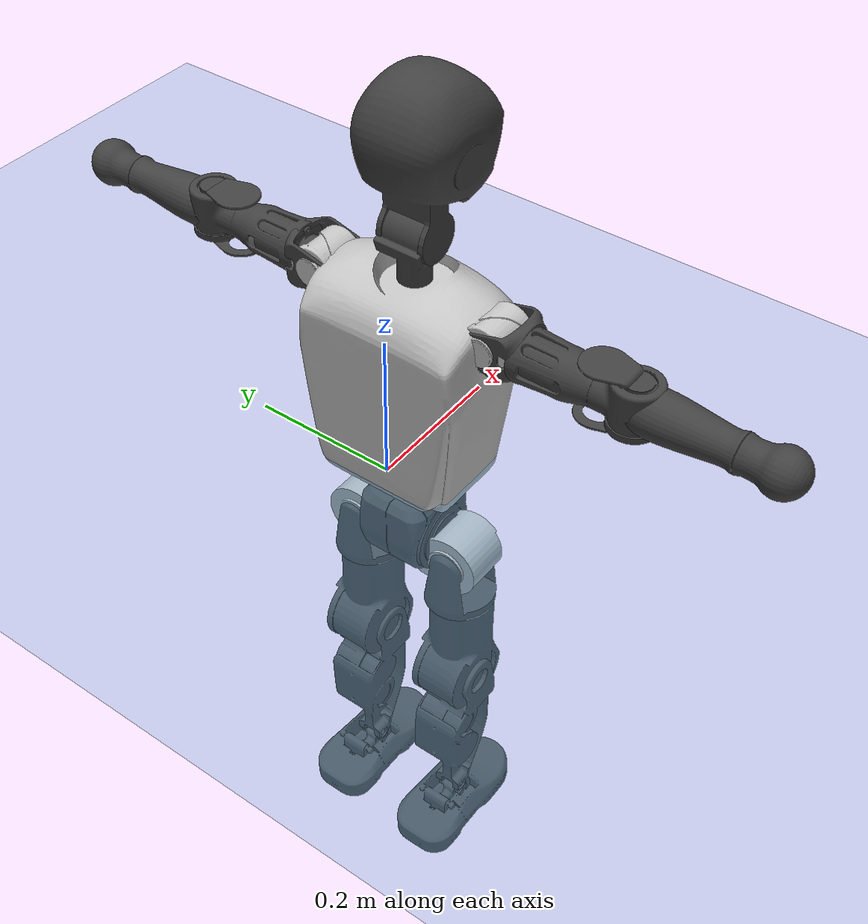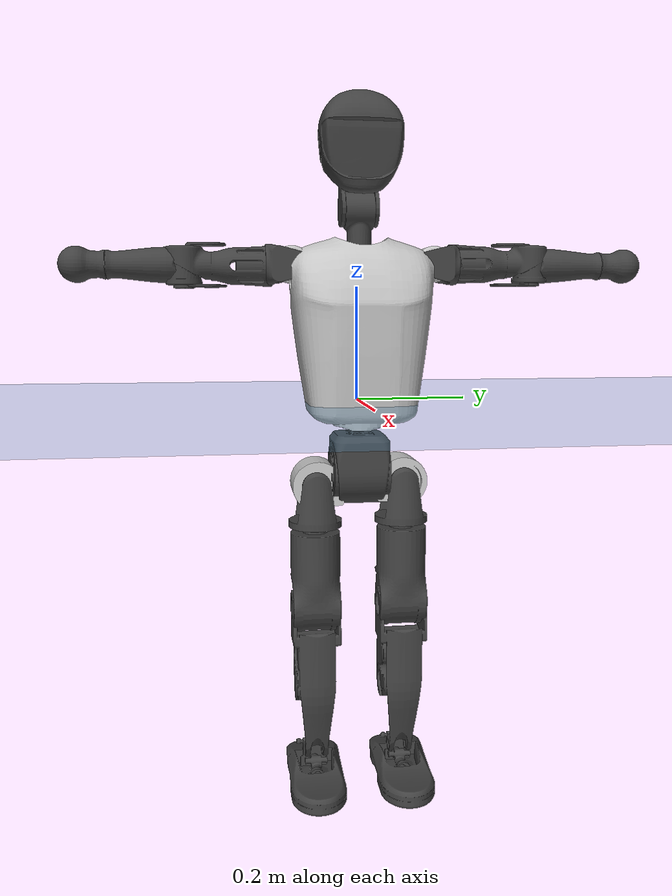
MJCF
<mujoco model="T1">
  <compiler angle="radian" assetdir="assets" balanceinertia="true" inertiafromgeom="false"/>

  <option timestep="0.005" density="1.2" viscosity="2e-05"/>

  <size nkey="1"/>

  <visual>
    <quality shadowsize="8192"/>
    <map shadowclip="0.5"/>
  </visual>

  <default>
    <default class="/">
      <joint armature="0.01" damping="0.01" frictionloss="0.1"/>
      <geom contype="0" conaffinity="0" group="1" solref="-1000 -80"/>
      <site size="0.01 0.005 0.005" group="5"/>
      <general forcelimited="true" biastype="affine" gainprm="25" biasprm="0 -25 -0.6"/>
      <default class="t1">
        <geom rgba="0.25 0.25 0.25 1"/>
        <default class="visual">
          <geom type="mesh" group="2"/>
        </default>
        <default class="collision">
          <geom group="3"/>
        </default>
        <default class="foot">
          <geom size="0.1115 0.05 0.015" type="box" condim="6" group="4" priority="1" solimp="0.015 1 0.015"/>
        </default>
        <default class="reward_collision_sphere">
          <geom group="5" rgba="1 0 0 1"/>
        </default>
      </default>
    </default>
  </default>

  <asset>
    <texture type="skybox" colorspace="auto" name="//unnamed_texture_0" builtin="gradient" rgb1="0.95 0.95 0.95" rgb2="0.95 0.95 0.95" width="100" height="600"/>
    <texture type="2d" colorspace="auto" name="texplane" builtin="checker" rgb1="0.345 0.575 0.748" rgb2="0.345 0.575 0.748" markrgb="1 1 1" width="512" height="512"/>
    <material name="MatPlane" class="/" texture="texplane" texuniform="true" texrepeat="2 2" specular="0.9"/>
    <mesh name="Trunk" class="/" file="Trunk.stl"/>
    <mesh name="H1" class="/" file="H1.stl"/>
    <mesh name="H2" class="/" file="H2.stl"/>
    <mesh name="AL1" class="/" file="AL1.stl"/>
    <mesh name="AL2" class="/" file="AL2.stl"/>
    <mesh name="AL3" class="/" file="AL3.stl"/>
    <mesh name="left_hand_link" class="/" file="left_hand_link.stl"/>
    <mesh name="AR1" class="/" file="AR1.stl"/>
    <mesh name="AR2" class="/" file="AR2.stl"/>
    <mesh name="AR3" class="/" file="AR3.stl"/>
    <mesh name="right_hand_link" class="/" file="right_hand_link.stl"/>
    <mesh name="Waist" class="/" file="Waist.stl"/>
    <mesh name="Hip_Pitch_Left" class="/" file="Hip_Pitch_Left.stl"/>
    <mesh name="Hip_Roll_Left" class="/" file="Hip_Roll_Left.stl"/>
    <mesh name="Hip_Yaw_Left" class="/" file="Hip_Yaw_Left.stl"/>
    <mesh name="Shank_Left" class="/" file="Shank_Left.stl"/>
    <mesh name="Ankle_Cross_Left" class="/" file="Ankle_Cross_Left.stl"/>
    <mesh name="left_foot_link" class="/" file="left_foot_link.stl"/>
    <mesh name="Hip_Pitch_Right" class="/" file="Hip_Pitch_Right.stl"/>
    <mesh name="Hip_Roll_Right" class="/" file="Hip_Roll_Right.stl"/>
    <mesh name="Hip_Yaw_Right" class="/" file="Hip_Yaw_Right.stl"/>
    <mesh name="Shank_Right" class="/" file="Shank_Right.stl"/>
    <mesh name="Ankle_Cross_Right" class="/" file="Ankle_Cross_Right.stl"/>
    <mesh name="right_foot_link" class="/" file="right_foot_link.stl"/>
  </asset>

  <worldbody>
    <geom name="floor" class="/" size="100 100 0.125" type="plane" group="0" material="MatPlane"/>
    <light name="toplight_shadow" class="/" pos="0 0 5" dir="0.0990148 0.0990148 -0.990148" type="directional" ambient="0.04 0.04 0.04" diffuse="0.55 0.55 0.55" specular="0.12 0.12 0.12"/>
    <light name="toplight_fill" class="/" pos="0 0 5" dir="0.0990148 0.0990148 -0.990148" type="directional" castshadow="false" ambient="0.04 0.04 0.04" diffuse="0.3 0.3 0.3" specular="0.08 0.08 0.08"/>
    <body name="trunk" childclass="t1" pos="-0.000190946 -0.00104 0.00263289" quat="1 0.000131056 6.45715e-05 5.21657e-05">
      <inertial pos="0.0475717 -0.0034118 0.113009" quat="0.999867 -0.00713965 -0.0138707 -0.00479098" mass="7.84314" diaginertia="0.0402088 0.0143023 0.0816313"/>
      <joint name="//unnamed_joint_0" type="free" armature="0" damping="0" frictionloss="0"/>
      <geom name="//unnamed_geom_1" class="visual" rgba="0.76 0.76 0.76 1" mesh="Trunk"/>
      <geom name="//unnamed_geom_2" class="collision" size="0.0660976 0.0881302 0.132195" pos="0.0507643 0 0.129588" type="box"/>
      <geom name="//unnamed_geom_3" class="reward_collision_sphere" size="0.10135" pos="0.0507643 0 0.10799"/>
      <geom name="//unnamed_geom_4" class="reward_collision_sphere" size="0.0132195" pos="0.0507643 0.0610245 0"/>
      <geom name="//unnamed_geom_5" class="reward_collision_sphere" size="0.0132195" pos="0.0507643 -0.0610245 0"/>
      <geom name="//unnamed_geom_6" class="reward_collision_sphere" size="0.0132195" pos="0.0507643 0.0768191 0.194382"/>
      <geom name="//unnamed_geom_7" class="reward_collision_sphere" size="0.0132195" pos="0.0507643 -0.0768191 0.194382"/>
      <site name="imu" pos="0.000382287 0.0139175 -0.00304861" size="0.00881302"/>
      <camera name="track" pos="0 -1.43587 0" quat="0.707107 0.707107 0 0" mode="trackcom"/>
      <camera name="ego_camera" pos="0.103221 0 0.453557" quat="-0.5 -0.5 0.5 0.5"/>
      <body name="H1" pos="0.0522768 -0.00242045 0.262198" quat="0.999999 0.00132045 4.10786e-05 0.000368301">
        <inertial pos="-0.00194993 -8.59514e-06 0.0626223" quat="0.764098 -0.0128402 0.00165694 0.64497" mass="0.295277" diaginertia="0.000103292 4.35176e-05 0.000222622"/>
        <joint name="AAHead_yaw" pos="0 0 0" axis="0.000362692 0.000890782 1" range="-1.55668 1.62092" armature="0.00878935" damping="0" frictionloss="0.0786345"/>
        <geom name="//unnamed_geom_8" class="visual" mesh="H1"/>
        <body name="H2" pos="-0.000444315 -0.000240358 0.0645257" quat="0.999999 -0.00114699 -8.88708e-05 3.89968e-05">
          <inertial pos="0.00484963 0.00243385 0.109055" quat="0.987282 0.107587 -0.0847265 -0.0807548" mass="0.43146" diaginertia="0.000881197 0.000363919 0.00250516"/>
          <joint name="Head_pitch" pos="0 0 0" axis="-0.0124006 -0.999922 -0.0016962" range="-1.24042 0.363094" armature="0.00897437" damping="0.00270191" frictionloss="0.0902212"/>
          <geom name="//unnamed_geom_9" class="visual" mesh="H2"/>
          <geom name="//unnamed_geom_10" class="collision" size="0.0705041" pos="0.00846072 0 0.118789"/>
          <geom name="//unnamed_geom_11" class="reward_collision_sphere" size="0.0793171" pos="0.0169214 0 0.10799"/>
        </body>
      </body>
      <body name="AL1" pos="0.0494489 0.0781133 0.234642" quat="1 -5.13322e-06 0.000394296 -2.38818e-05">
        <inertial pos="-0.000901078 0.0302572 -1.07709e-05" quat="0.509655 0.485679 -0.511372 0.492815" mass="0.349542" diaginertia="0.000565272 0.00023842 0.000415844"/>
        <joint name="Left_Shoulder_Pitch" pos="0 0 0" axis="0.0102062 0.999943 0.00326135" range="-3.25396 1.21648" armature="0.0076397" damping="0" frictionloss="0.0835042"/>
        <geom name="//unnamed_geom_12" class="visual" rgba="0.76 0.76 0.76 1" mesh="AL1"/>
        <body name="AL2" pos="0.000963715 0.0353052 -0.000215376" quat="0.999999 -0.000625878 -6.93932e-05 -0.00117215">
          <inertial pos="0.00577884 0.0288251 -0.000283918" quat="0.489816 0.511607 -0.49285 0.505409" mass="0.105235" diaginertia="0.000166667 6.40217e-05 0.000247051"/>
          <joint name="Left_Shoulder_Roll" pos="0 0 0" axis="-0.999999 -0.000509753 -0.00155761" range="-1.5767 1.75824" armature="0.00983036" damping="0.0200656" frictionloss="0.0922334"/>
          <geom name="//unnamed_geom_13" class="visual" mesh="AL2"/>
          <body name="AL3" pos="-0.0011209 0.0428389 0.00119151" quat="0.999999 0.000582288 -0.0012214 -0.000264981">
            <inertial pos="0.00244572 0.0602309 0.000732626" quat="0.709049 0.70507 -0.00826189 -0.00759309" mass="0.717822" diaginertia="0.00577644 0.0025851 0.000937669"/>
            <joint name="Left_Elbow_Pitch" pos="0 0 0" axis="-9.128e-05 -0.999998 0.00185377" stiffness="0.00167882" range="-2.2702 2.31932" armature="0.0100155" damping="0.00917997" frictionloss="0.0992309"/>
            <geom name="//unnamed_geom_14" class="visual" mesh="AL3"/>
            <geom name="//unnamed_geom_15" class="collision" size="0.026439 0.0660976" pos="0 0.0358968 0" quat="0.707105 0.707108 0 0" type="cylinder"/>
            <geom name="//unnamed_geom_16" class="reward_collision_sphere" size="0.0317269"/>
            <body name="left_hand_link" pos="-0.00119732 0.106286 -0.00119304" quat="0.999999 -0.000336404 -0.000843314 0.00088345">
              <inertial pos="0.00147615 0.0812492 0.000378178" quat="0.708228 0.705971 -0.00244053 -0.0033192" mass="0.219412" diaginertia="0.00364544 0.00159869 0.00030395"/>
              <joint name="Left_Elbow_Yaw" pos="0 0 0" axis="0.00104364 0.0153922 0.999881" range="-2.46826 0.0510569" armature="0.00769545" damping="0" frictionloss="0.0947063"/>
              <geom name="//unnamed_geom_17" class="visual" mesh="left_hand_link"/>
              <geom name="//unnamed_geom_18" class="collision" size="0.026439 0.0771139" pos="0 0.0933316 0" quat="0.707105 0.707108 0 0" type="cylinder"/>
              <geom name="//unnamed_geom_19" class="reward_collision_sphere" size="0.0440651"/>
              <geom name="//unnamed_geom_20" class="reward_collision_sphere" size="0.0308456" pos="0 0.0789729 0"/>
              <geom name="//unnamed_geom_21" class="reward_collision_sphere" size="0.0308456" pos="0 0.154356 0"/>
            </body>
          </body>
        </body>
      </body>
      <body name="AR1" pos="0.0489456 -0.0723372 0.233272" quat="1 2.16602e-05 0.000360351 -1.36993e-05">
        <inertial pos="-0.00103907 -0.0353004 0.000287963" quat="0.502574 0.49547 -0.5049 0.496996" mass="0.37093" diaginertia="0.000590102 0.000242669 0.000428404"/>
        <joint name="Right_Shoulder_Pitch" pos="0 0 0" axis="-0.0101771 -0.999914 0.00824123" range="-1.22621 3.36411" armature="0.00925256" damping="0.0119509" frictionloss="0.0764332"/>
        <geom name="//unnamed_geom_22" class="visual" rgba="0.76 0.76 0.76 1" mesh="AR1"/>
        <body name="AR2" pos="0.00208051 -0.0353219 -0.000815278" quat="1 6.20406e-05 1.22802e-05 -6.37406e-06">
          <inertial pos="0.00591672 -0.0273565 -0.000848177" quat="0.511666 0.488044 -0.511748 0.48798" mass="0.117057" diaginertia="0.000179444 6.6847e-05 0.000268696"/>
          <joint name="Right_Shoulder_Roll" pos="0 0 0" axis="-0.999982 0.00572428 0.00156436" range="-1.7288 1.62307" armature="0.00928569" damping="0" frictionloss="0.10019"/>
          <geom name="//unnamed_geom_23" class="visual" mesh="AR2"/>
          <body name="AR3" pos="-0.00304971 -0.0447178 -0.00265847" quat="1 7.70851e-06 0.000454235 -0.000449536">
            <inertial pos="-0.000426433 -0.0587166 6.26449e-05" quat="0.706391 0.70781 0.00109174 0.00407155" mass="0.740733" diaginertia="0.00573259 0.00251637 0.000936008"/>
            <joint name="Right_Elbow_Pitch" pos="0 0 0" axis="-0.000164914 1 0.000159369" range="-2.325 2.21319" armature="0.00884786" damping="0.0137132" frictionloss="0.0890158"/>
            <geom name="//unnamed_geom_24" class="visual" mesh="AR3"/>
            <geom name="//unnamed_geom_25" class="collision" size="0.026439 0.0660976" pos="0 -0.0358968 0" quat="0.707105 0.707108 0 0" type="cylinder"/>
            <geom name="//unnamed_geom_26" class="reward_collision_sphere" size="0.0317269"/>
            <body name="right_hand_link" pos="-0.00108769 -0.104868 0.00112335" quat="1 4.28271e-05 7.05088e-05 4.92775e-05">
              <inertial pos="0.000278776 -0.0782529 -0.00153354" quat="0.713324 0.70082 -0.0045961 0.000325409" mass="0.211055" diaginertia="0.00339846 0.0015288 0.000309235"/>
              <joint name="Right_Elbow_Yaw" pos="0 0 0" axis="0.0155309 -0.000750264 0.999879" stiffness="0.00202685" range="0.00626325 2.49329" armature="0.00915534" damping="0.00743523" frictionloss="0.0909215"/>
              <geom name="//unnamed_geom_27" class="visual" mesh="right_hand_link"/>
              <geom name="//unnamed_geom_28" class="collision" size="0.026439 0.0771139" pos="0 -0.0933316 0" quat="0.707105 0.707108 0 0" type="cylinder"/>
              <geom name="//unnamed_geom_29" class="reward_collision_sphere" size="0.0440651"/>
              <geom name="//unnamed_geom_30" class="reward_collision_sphere" size="0.0308456" pos="0 -0.0789729 0"/>
              <geom name="//unnamed_geom_31" class="reward_collision_sphere" size="0.0308456" pos="0 -0.154356 0"/>
            </body>
          </body>
        </body>
      </body>
      <body name="Waist" pos="0.0510193 -0.00262251 -0.125366" quat="0.999999 -0.00115682 0.000419277 0.00098393">
        <inertial pos="0.000519496 -0.00375755 0.00680414" quat="0.983592 0.000193424 -0.180383 0.00280155" mass="1.77281" diaginertia="0.00228753 0.000983111 0.00674172"/>
        <joint name="Waist" pos="0 0 0" axis="0.00771806 0.00948918 0.999925" stiffness="0.00538371" range="-1.5812 1.56225" armature="0.00868239" damping="0" frictionloss="0.0763438"/>
        <geom name="//unnamed_geom_32" class="visual" mesh="Waist"/>
        <body name="Hip_Pitch_Left" pos="0.00259039 0.0739238 0.00245837" quat="0.999999 -0.000365859 -0.00151574 -0.0004053">
          <inertial pos="0.000733339 -0.00524511 -0.0193189" quat="0.974551 0.223809 0.0119645 -0.0041595" mass="0.696399" diaginertia="0.000779673 0.000282681 0.00178535"/>
          <joint name="Left_Hip_Pitch" pos="0 0 0" axis="-0.00130086 0.999999 -0.000715618" range="-1.77707 1.56785" armature="0.00899046" damping="0.00776298" frictionloss="0.0902698"/>
          <geom name="//unnamed_geom_33" class="visual" rgba="0.76 0.76 0.76 1" mesh="Hip_Pitch_Left"/>
          <body name="Hip_Roll_Left" pos="0.00264456 0.00187416 -0.0198963" quat="0.999999 0.000537269 0.000256587 -0.000960334">
            <inertial pos="-0.00162818 -0.00308314 -0.0586825" quat="0.708877 -0.0178903 -0.00618762 0.705078" mass="0.259673" diaginertia="0.000720089 0.000281853 0.000747239"/>
            <joint name="Left_Hip_Roll" pos="0 0 0" axis="-0.999942 0.0107301 -0.000204211" range="-1.61937 0.256381" armature="0.00995023" damping="0.005935" frictionloss="0.0903526"/>
            <geom name="//unnamed_geom_34" class="visual" mesh="Hip_Roll_Left"/>
            <geom name="//unnamed_geom_35" class="reward_collision_sphere" size="0.0484716"/>
            <body name="Hip_Yaw_Left" pos="0.00198143 0.00107891 -0.0863081" quat="0.999999 -0.000893956 0.000935134 -0.000790408">
              <inertial pos="-0.00687073 0.000321543 -0.0980149" quat="0.69299 -0.0333027 -0.0318422 0.719473" mass="1.49942" diaginertia="0.0109258 0.00487551 0.00397031"/>
              <joint name="Left_Hip_Yaw" pos="0 0 0" axis="0.000525668 0.00387363 -0.999992" range="-1.02214 0.953358" armature="0.00835355" damping="0.0137369" frictionloss="0.0935043"/>
              <geom name="//unnamed_geom_36" class="visual" mesh="Hip_Yaw_Left"/>
              <geom name="//unnamed_geom_37" class="collision" size="0.0440651 0.0705041" type="cylinder"/>
              <body name="Shank_Left" pos="-0.00935613 0.00153119 -0.148004" quat="1 5.18097e-05 8.17489e-05 -2.27375e-05">
                <inertial pos="-0.00228278 -0.00270127 -0.134714" quat="0.997348 -0.0011805 -0.022353 0.0692555" mass="1.15475" diaginertia="0.0149174 0.00633241 0.00266794"/>
                <joint name="Left_Knee_Pitch" pos="0 0 0" axis="0.00336559 0.999971 -0.00683856" stiffness="0.00168456" range="0.0322792 2.35935" armature="0.00910389" damping="0.00659821" frictionloss="0.0844284"/>
                <geom name="//unnamed_geom_38" class="visual" mesh="Shank_Left"/>
                <geom name="//unnamed_geom_39" class="collision" size="0.0440651 0.0660976" pos="0 0 -0.129588" type="cylinder"/>
                <geom name="//unnamed_geom_40" class="reward_collision_sphere" size="0.0572846"/>
                <body name="Ankle_Cross_Left" pos="0.00110955 0.000156391 -0.300363" quat="1 -0.000546405 -0.000524986 0.000645863">
                  <inertial pos="-0.000484851 -0.0003134 -0.0102183" quat="0.445584 0.550425 0.550096 0.442586" mass="0.0516367" diaginertia="1.27409e-05 4.84045e-06 1.6612e-05"/>
                  <joint name="Left_Ankle_Pitch" pos="0 0 0" axis="0.00916932 0.999952 0.00339044" stiffness="0.00324423" range="-0.868605 0.349244" armature="0.00890498" damping="0.0162459" frictionloss="0.07713"/>
                  <geom name="//unnamed_geom_41" class="visual" mesh="Ankle_Cross_Left"/>
                  <body name="left_foot_link" pos="0.000299536 0.00371507 -0.013597" quat="1 0.000304334 -0.000341538 0.000335003">
                    <inertial pos="-7.82999e-05 0.00275237 -0.0103664" quat="0.00469384 0.6193 0.00963332 0.785081" mass="0.450499" diaginertia="0.00119636 0.000462068 0.00324283"/>
                    <joint name="Left_Ankle_Roll" pos="0 0 0" axis="-0.999911 -0.00234043 -0.0131037" range="-0.4442 0.494219" armature="0.00976424" damping="0.00918742" frictionloss="0.0887876"/>
                    <geom name="//unnamed_geom_42" class="visual" mesh="left_foot_link"/>
                    <geom name="left_foot" class="foot" size="0.106751 0.0511455 0.0136697" pos="0.00846072 0 -0.0161985"/>
                    <geom name="//unnamed_geom_44" class="reward_collision_sphere" size="0.0458277" pos="0.00846072 0 -0.0161985"/>
                    <geom name="//unnamed_geom_45" class="reward_collision_sphere" size="0.026439" pos="0.0803769 -0.0165125 -0.0161985"/>
                    <geom name="//unnamed_geom_46" class="reward_collision_sphere" size="0.026439" pos="-0.0592251 -0.0165125 -0.0161985"/>
                    <site name="left_foot" class="foot" pos="0.00846072 0 -0.0161985" size="0.00881302"/>
                  </body>
                </body>
              </body>
            </body>
          </body>
        </body>
        <body name="Hip_Pitch_Right" pos="0.0025447 -0.0773041 -0.00238921" quat="1 -6.53531e-05 2.50993e-05 -0.000304607">
          <inertial pos="-0.00234724 0.00459803 -0.0195899" quat="0.974847 -0.222398 0.0113154 -0.00921811" mass="0.682461" diaginertia="0.000766827 0.000275909 0.00180472"/>
          <joint name="Right_Hip_Pitch" pos="0 0 0" axis="-0.00109131 -0.999999 0.00057945" range="-1.58924 1.75878" armature="0.00974473" damping="0.003836" frictionloss="0.0823683"/>
          <geom name="//unnamed_geom_47" class="visual" rgba="0.76 0.76 0.76 1" mesh="Hip_Pitch_Right"/>
          <body name="Hip_Roll_Right" pos="-0.00042528 -0.0020414 -0.020498" quat="1 -3.36755e-05 0.000464609 0.000219577">
            <inertial pos="0.00141333 -0.00311945 -0.0605097" quat="0.700755 -0.0160779 -0.00963477 0.713155" mass="0.252804" diaginertia="0.000725497 0.000282486 0.000734791"/>
            <joint name="Right_Hip_Roll" pos="0 0 0" axis="-0.999998 -0.00180976 -0.0011459" range="-0.188434 1.57197" armature="0.00865258" damping="0.00545311" frictionloss="0.0763883"/>
            <geom name="//unnamed_geom_48" class="visual" mesh="Hip_Roll_Right"/>
            <geom name="//unnamed_geom_49" class="reward_collision_sphere" size="0.0484716"/>
            <body name="Hip_Yaw_Right" pos="0.00331166 -0.000475872 -0.0868737" quat="0.999999 0.000361845 -0.00104132 0.000956353">
              <inertial pos="-0.00587341 -0.00272392 -0.0953978" quat="0.714775 -0.0308544 -0.0347203 0.69781" mass="1.4767" diaginertia="0.010853 0.00470306 0.00372758"/>
              <joint name="Right_Hip_Yaw" pos="0 0 0" axis="-0.0122268 0.00771379 -0.999895" range="-1.04135 1.0603" armature="0.0092197" damping="0.0106526" frictionloss="0.0877735"/>
              <geom name="//unnamed_geom_50" class="visual" mesh="Hip_Yaw_Right"/>
              <geom name="//unnamed_geom_51" class="collision" size="0.0440651 0.0705041" type="cylinder"/>
              <body name="Shank_Right" pos="-0.0117572 0.000193011 -0.143951" quat="1 -7.955e-05 -3.42248e-05 6.4547e-05">
                <inertial pos="-0.00553303 0.000553783 -0.133671" quat="0.999231 -0.00499155 -0.022069 -0.032025" mass="1.17562" diaginertia="0.0143348 0.00641524 0.00278692"/>
                <joint name="Right_Knee_Pitch" pos="0 0 0" axis="-0.000918192 -0.999999 -0.00100672" range="-2.31258 0.00967024" armature="0.00876366" damping="0.00649525" frictionloss="0.0901255"/>
                <geom name="//unnamed_geom_52" class="visual" mesh="Shank_Right"/>
                <geom name="//unnamed_geom_53" class="collision" size="0.0440651 0.0660976" pos="0 0 -0.129588" type="cylinder"/>
                <geom name="//unnamed_geom_54" class="reward_collision_sphere" size="0.0572846"/>
                <body name="Ankle_Cross_Right" pos="0.0005061 -0.00043413 -0.3024" quat="0.999999 0.000858858 -0.000864189 0.000580534">
                  <inertial pos="-0.00236029 0.00108377 -0.0113071" quat="0.432403 0.550911 0.558515 0.444507" mass="0.0479032" diaginertia="1.17781e-05 4.88206e-06 1.55547e-05"/>
                  <joint name="Right_Ankle_Pitch" pos="0 0 0" axis="0.012053 -0.999907 -0.0063667" range="-0.299196 0.875028" armature="0.00870835" damping="0" frictionloss="0.0761385"/>
                  <geom name="//unnamed_geom_55" class="visual" mesh="Ankle_Cross_Right"/>
                  <body name="right_foot_link" pos="0.000701308 -0.00165483 -0.012593" quat="1 0.000115532 -0.000180921 0.000119731">
                    <inertial pos="-0.00231649 -0.00281588 -0.010205" quat="-0.00329449 0.619297 0.0117692 0.785062" mass="0.472215" diaginertia="0.00117911 0.000459501 0.00314099"/>
                    <joint name="Right_Ankle_Roll" pos="0 0 0" axis="-1 -0.000457922 -0.000557222" stiffness="0.00310073" range="-0.419688 0.430644" armature="0.00941236" damping="0.0201568" frictionloss="0.0899465"/>
                    <geom name="//unnamed_geom_56" class="visual" mesh="right_foot_link"/>
                    <geom name="right_foot" class="foot" size="0.099464 0.0458418 0.0129477" pos="0.00846072 0 -0.0161985"/>
                    <geom name="//unnamed_geom_58" class="reward_collision_sphere" size="0.0352521"/>
                    <geom name="//unnamed_geom_59" class="reward_collision_sphere" size="0.026439" pos="0.00846072 0 -0.0161985"/>
                    <geom name="//unnamed_geom_60" class="reward_collision_sphere" size="0.026439" pos="0.0803769 0.0165125 -0.0161985"/>
                    <geom name="//unnamed_geom_61" class="reward_collision_sphere" size="0.026439" pos="-0.0592251 0.0165125 -0.0161985"/>
                    <site name="right_foot" class="foot" pos="0.00846072 0 -0.0161985" size="0.00881302"/>
                  </body>
                </body>
              </body>
            </body>
          </body>
        </body>
      </body>
    </body>
  </worldbody>

  <contact>
    <pair class="/" geom1="floor" geom2="left_foot" name="//unnamed_contact_0"/>
    <pair class="/" geom1="floor" geom2="right_foot" name="//unnamed_contact_1"/>
  </contact>

  <actuator>
    <general name="AAHead_yaw" class="/" joint="AAHead_yaw" forcerange="-6.73006 6.73006" gainprm="21.6397" biasprm="0 -21.6397 -0.487793"/>
    <general name="Head_pitch" class="/" joint="Head_pitch" forcerange="-6.75387 6.75387" gainprm="21.6397" biasprm="0 -21.6397 -0.487793"/>
    <general name="Left_Shoulder_Pitch" class="/" joint="Left_Shoulder_Pitch" forcerange="-15.42 15.42" gainprm="21.6397" biasprm="0 -21.6397 -0.487793"/>
    <general name="Left_Shoulder_Roll" class="/" joint="Left_Shoulder_Roll" forcerange="-15.3341 15.3341" gainprm="21.6397" biasprm="0 -21.6397 -0.487793"/>
    <general name="Left_Elbow_Pitch" class="/" joint="Left_Elbow_Pitch" forcerange="-17.5186 17.5186" gainprm="21.6397" biasprm="0 -21.6397 -0.487793"/>
    <general name="Left_Elbow_Yaw" class="/" joint="Left_Elbow_Yaw" forcerange="-14.5973 14.5973" gainprm="21.6397" biasprm="0 -21.6397 -0.487793"/>
    <general name="Right_Shoulder_Pitch" class="/" joint="Right_Shoulder_Pitch" forcerange="-14.3959 14.3959" gainprm="21.6397" biasprm="0 -21.6397 -0.487793"/>
    <general name="Right_Shoulder_Roll" class="/" joint="Right_Shoulder_Roll" forcerange="-15.5314 15.5314" gainprm="21.6397" biasprm="0 -21.6397 -0.487793"/>
    <general name="Right_Elbow_Pitch" class="/" joint="Right_Elbow_Pitch" forcerange="-17.4921 17.4921" gainprm="21.6397" biasprm="0 -21.6397 -0.487793"/>
    <general name="Right_Elbow_Yaw" class="/" joint="Right_Elbow_Yaw" forcerange="-16.2139 16.2139" gainprm="21.6397" biasprm="0 -21.6397 -0.487793"/>
    <general name="Waist" class="/" joint="Waist" forcerange="-27.485 27.485" gainprm="21.6397" biasprm="0 -21.6397 -0.487793"/>
    <general name="Left_Hip_Pitch" class="/" joint="Left_Hip_Pitch" forcerange="-39.4613 39.4613" gainprm="21.6397" biasprm="0 -21.6397 -0.487793"/>
    <general name="Left_Hip_Roll" class="/" joint="Left_Hip_Roll" forcerange="-29.2049 29.2049" gainprm="21.6397" biasprm="0 -21.6397 -0.487793"/>
    <general name="Left_Hip_Yaw" class="/" joint="Left_Hip_Yaw" forcerange="-24.0766 24.0766" gainprm="21.6397" biasprm="0 -21.6397 -0.487793"/>
    <general name="Left_Knee_Pitch" class="/" joint="Left_Knee_Pitch" forcerange="-57.7854 57.7854" gainprm="21.6397" biasprm="0 -21.6397 -0.487793"/>
    <general name="Left_Ankle_Pitch" class="/" joint="Left_Ankle_Pitch" forcerange="-16.2497 16.2497" gainprm="21.6397" biasprm="0 -21.6397 -0.487793"/>
    <general name="Left_Ankle_Roll" class="/" joint="Left_Ankle_Roll" forcerange="-13.35 13.35" gainprm="21.6397" biasprm="0 -21.6397 -0.487793"/>
    <general name="Right_Hip_Pitch" class="/" joint="Right_Hip_Pitch" forcerange="-39.5902 39.5902" gainprm="21.6397" biasprm="0 -21.6397 -0.487793"/>
    <general name="Right_Hip_Roll" class="/" joint="Right_Hip_Roll" forcerange="-24.6715 24.6715" gainprm="21.6397" biasprm="0 -21.6397 -0.487793"/>
    <general name="Right_Hip_Yaw" class="/" joint="Right_Hip_Yaw" forcerange="-24.7986 24.7986" gainprm="21.6397" biasprm="0 -21.6397 -0.487793"/>
    <general name="Right_Knee_Pitch" class="/" joint="Right_Knee_Pitch" forcerange="-58.323 58.323" gainprm="21.6397" biasprm="0 -21.6397 -0.487793"/>
    <general name="Right_Ankle_Pitch" class="/" joint="Right_Ankle_Pitch" forcerange="-18.961 18.961" gainprm="21.6397" biasprm="0 -21.6397 -0.487793"/>
    <general name="Right_Ankle_Roll" class="/" joint="Right_Ankle_Roll" forcerange="-11.8933 11.8933" gainprm="21.6397" biasprm="0 -21.6397 -0.487793"/>
  </actuator>

  <sensor>
    <gyro site="imu" name="imu_angular_velocity"/>
    <velocimeter site="imu" name="imu_linear_velocity"/>
    <framelinvel objtype="site" objname="left_foot" name="left_foot_global_linear_velocity"/>
    <framelinvel objtype="site" objname="right_foot" name="right_foot_global_linear_velocity"/>
  </sensor>

  <keyframe>
    <key name="home" qpos="0 0 0.6385 1 0 0 0 0 0 0 1.4 0 -0.4 0 -1.4 0 0.4 0 -0.4 0 0 0.8 -0.4 0 0.4 0 0 -0.8 0.4 0"/>
  </keyframe>
</mujoco>
